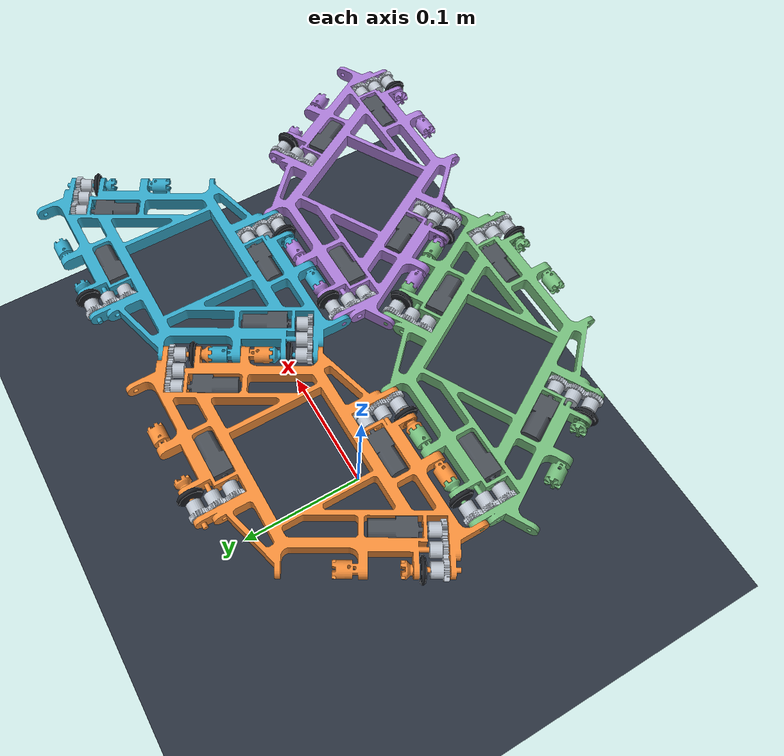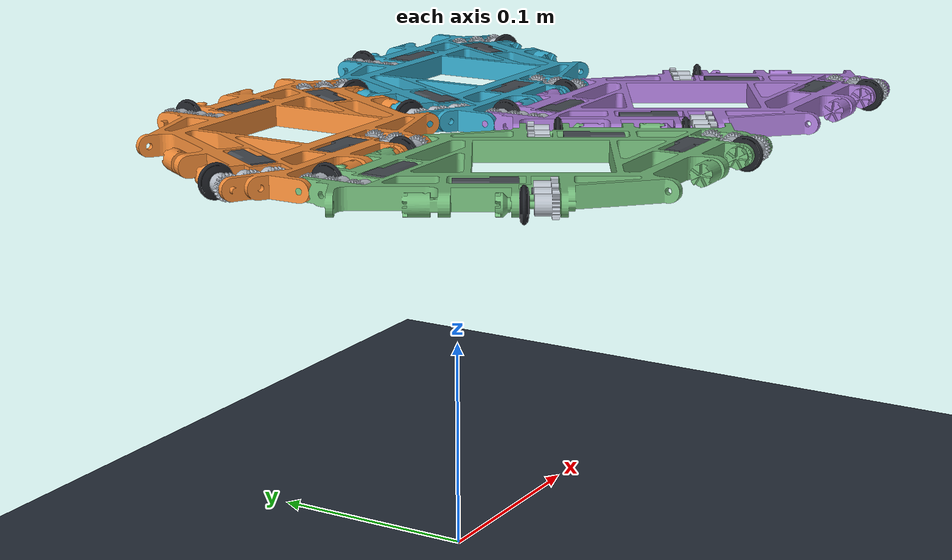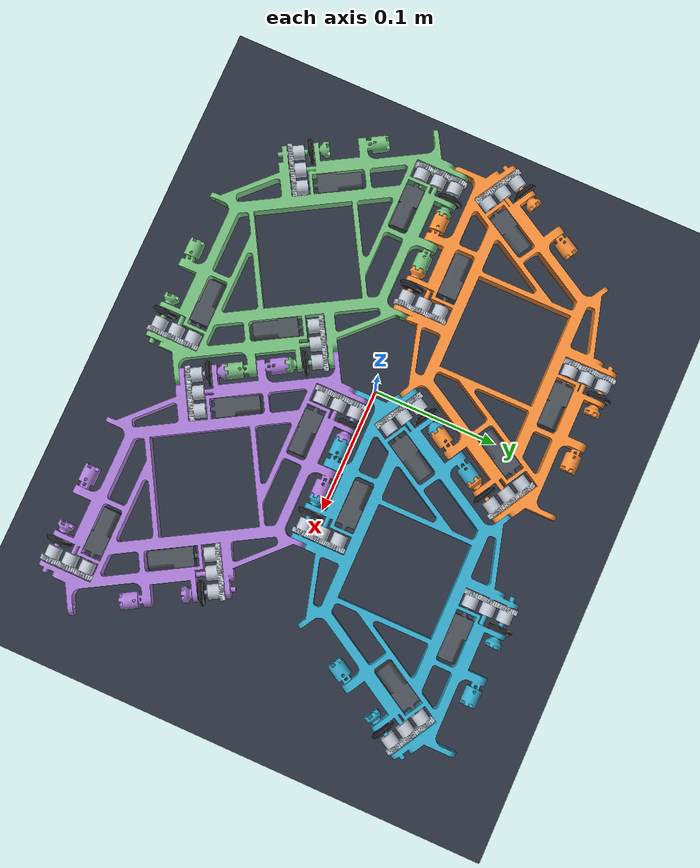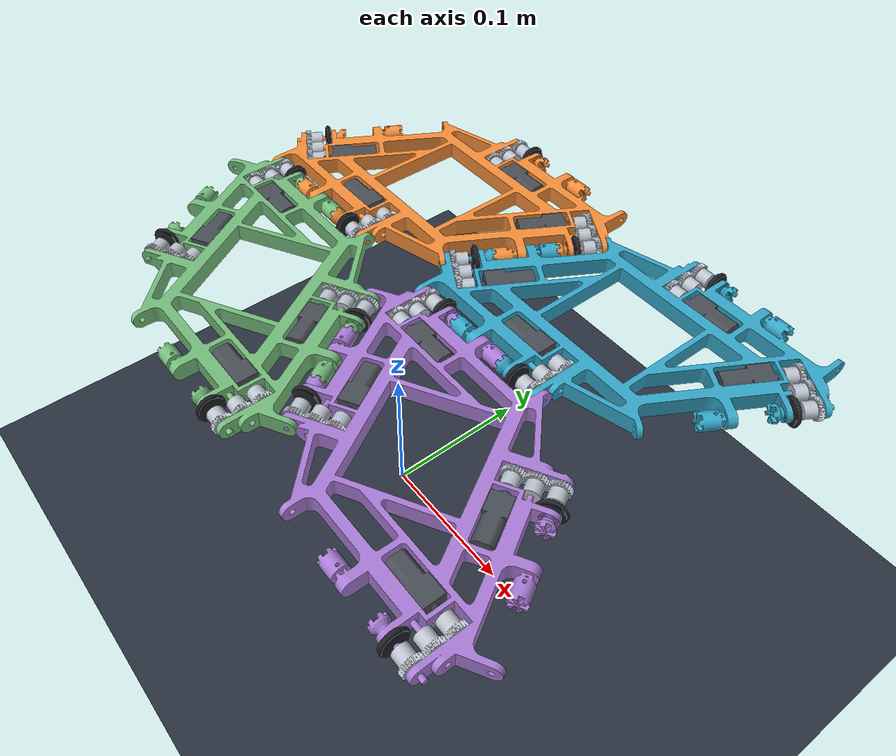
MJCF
<mujoco model="four_panel_miura">
  <compiler angle="radian" meshdir="meshes" autolimits="true" />
  <option timestep="0.001" integrator="implicitfast" iterations="150" tolerance="1e-10">
    <flag filterparent="disable" />
  </option>
  <visual>
    <global offwidth="1200" offheight="900" />
  </visual>
  <asset>
    <mesh name="wheel" file="wheel.obj" />
    <mesh name="motor" file="motor.obj" />
    <mesh name="frame_0" file="frame_0.obj" />
    <mesh name="core_0" file="core_0.obj" />
    <mesh name="p0_m0_gear" file="p0_m0_gear.obj" />
    <mesh name="p0_m0_original_coupler" file="p0_m0_original_coupler.obj" />
    <mesh name="p0_m1_gear" file="p0_m1_gear.obj" />
    <mesh name="p0_m1_original_coupler" file="p0_m1_original_coupler.obj" />
    <mesh name="p0_m2_gear" file="p0_m2_gear.obj" />
    <mesh name="p0_m2_original_coupler" file="p0_m2_original_coupler.obj" />
    <mesh name="p0_m3_gear" file="p0_m3_gear.obj" />
    <mesh name="p0_m3_original_coupler" file="p0_m3_original_coupler.obj" />
    <mesh name="frame_1" file="frame_1.obj" />
    <mesh name="core_1" file="core_1.obj" />
    <mesh name="p1_m0_gear" file="p1_m0_gear.obj" />
    <mesh name="p1_m0_original_coupler" file="p1_m0_original_coupler.obj" />
    <mesh name="p1_m1_gear" file="p1_m1_gear.obj" />
    <mesh name="p1_m1_original_coupler" file="p1_m1_original_coupler.obj" />
    <mesh name="p1_m2_gear" file="p1_m2_gear.obj" />
    <mesh name="p1_m2_original_coupler" file="p1_m2_original_coupler.obj" />
    <mesh name="p1_m3_gear" file="p1_m3_gear.obj" />
    <mesh name="p1_m3_original_coupler" file="p1_m3_original_coupler.obj" />
    <mesh name="frame_2" file="frame_2.obj" />
    <mesh name="core_2" file="core_2.obj" />
    <mesh name="p2_m0_gear" file="p2_m0_gear.obj" />
    <mesh name="p2_m0_original_coupler" file="p2_m0_original_coupler.obj" />
    <mesh name="p2_m1_gear" file="p2_m1_gear.obj" />
    <mesh name="p2_m1_original_coupler" file="p2_m1_original_coupler.obj" />
    <mesh name="p2_m2_gear" file="p2_m2_gear.obj" />
    <mesh name="p2_m2_original_coupler" file="p2_m2_original_coupler.obj" />
    <mesh name="p2_m3_gear" file="p2_m3_gear.obj" />
    <mesh name="p2_m3_original_coupler" file="p2_m3_original_coupler.obj" />
    <mesh name="frame_3" file="frame_3.obj" />
    <mesh name="core_3" file="core_3.obj" />
    <mesh name="p3_m0_gear" file="p3_m0_gear.obj" />
    <mesh name="p3_m0_original_coupler" file="p3_m0_original_coupler.obj" />
    <mesh name="p3_m1_gear" file="p3_m1_gear.obj" />
    <mesh name="p3_m1_original_coupler" file="p3_m1_original_coupler.obj" />
    <mesh name="p3_m2_gear" file="p3_m2_gear.obj" />
    <mesh name="p3_m2_original_coupler" file="p3_m2_original_coupler.obj" />
    <mesh name="p3_m3_gear" file="p3_m3_gear.obj" />
    <mesh name="p3_m3_original_coupler" file="p3_m3_original_coupler.obj" />
  </asset>
  <worldbody>
    <light pos="0 -0.2 1" dir="0 0 -1" diffuse=".9 .9 .9" />
    <geom name="floor" type="plane" size="2 2 .1" rgba=".16 .19 .24 1" contype="1" conaffinity="0" />
    <body name="panel_0" pos="0 0 .2">
      <freejoint name="base" />
      <body name="panel_1">
        <joint name="fold_1" axis="0.5 0.8660254038 0" damping="0.005" armature=".00001" limited="true" range="-1.5 1.5" />
        <body name="panel_2">
          <joint name="fold_2" axis="-1 1.224646799e-16 0" damping="0.005" armature=".00001" limited="true" range="-1.5 1.5" />
          <body name="panel_3">
            <joint name="fold_3" axis="0.5 -0.8660254038 0" damping="0.005" armature=".00001" limited="true" range="-1.5 1.5" />
            <geom name="panel_visual_3" type="mesh" mesh="frame_3" rgba=".66 .48 .83 1" mass="0" contype="0" conaffinity="0" group="1" />
            <inertial pos="0.1125000022 -0.06495190238 9.536743166e-10" mass="0.12" diaginertia="0.000225 0.000225 0.00045" />
            <geom name="panel_ground_3" type="mesh" mesh="frame_3" mass="0" group="3" rgba="1 0 0 0" contype="0" conaffinity="1" />
            <geom name="panel_collision_3" type="mesh" mesh="core_3" mass="0" group="3" rgba="1 0 0 0" contype="16" conaffinity="14" friction="0.9 .002 .0001" />
            <body name="p3_m0_drive" pos="0.0369999991 -0.02199999931 1.025015409e-09">
              <joint name="p3_m0" axis="1 -1.892219381e-09 0" damping=".000002" armature=".000002" limited="false" />
              <geom name="p3_m0_gear_visual" type="mesh" mesh="p3_m0_gear" rgba=".73 .76 .8 1" mass="0.002" contype="0" conaffinity="0" />
            </body>
            <body name="p3_m0_idler_drive" pos="0.03699999912 -0.01099999931 1.025015409e-09">
              <joint name="p3_m0_idler" axis="1 -1.892219381e-09 0" damping=".000002" armature=".0000003" limited="false" />
              <geom name="p3_m0_idler_gear_visual" type="mesh" mesh="p3_m0_gear" rgba=".73 .76 .8 1" mass="0.002" contype="0" conaffinity="0" />
            </body>
            <body name="p3_m0_output_drive" pos="0.03699999914 6.895472104e-10 1.025015409e-09">
              <joint name="p3_m0_output" axis="1 -1.892219381e-09 0" damping=".000002" armature=".0000003" limited="false" />
              <geom name="p3_m0_output_gear_visual" type="mesh" mesh="p3_m0_gear" rgba=".73 .76 .8 1" mass="0.002" contype="0" conaffinity="0" />
              <geom name="p3_m0_coupler" type="mesh" mesh="p3_m0_original_coupler" rgba=".66 .48 .83 1" mass=".0003" contype="0" conaffinity="0" />
              <geom name="p3_m0_wheel" type="mesh" mesh="wheel" pos="0.009 -1.702997443e-11 0" quat="-0.7071067805 0 0 0.7071067819" rgba=".12 .13 .15 1" mass="0" contype="0" conaffinity="0" />
              <geom name="p3_m0_tire" type="cylinder" pos="0.009 -1.702997443e-11 0" quat="0.7071067812 1.338001156e-09 0.7071067812 0" size=".008 .002" mass="0.003" rgba=".12 .13 .15 0" group="3" condim="4" contype="16" conaffinity="15" friction="0.9 .002 .0001" />
            </body>
            <geom name="p3_m0_motor_housing" type="mesh" mesh="motor" pos="0.0563999991 -0.02199999935 1.025015409e-09" quat="1 0 0 -9.461096223e-10" mass="0" rgba=".28 .3 .33 1" contype="0" conaffinity="0" />
            <geom name="p3_m0_motor_collision" type="box" pos="0.0563999991 -0.02199999935 1.025015409e-09" quat="1 0 0 -9.461096223e-10" size=".0186 .006 .005" mass="0" rgba="0 0 0 0" group="3" contype="16" conaffinity="15" friction="0.9 .002 .0001" />
            <body pos="0.0563999991 -0.02199999935 1.025015409e-09">
              <inertial pos="0 0 0" mass="0.01" diaginertia="0.0000002 0.0000012 0.0000012" />
            </body>
            <site name="interlock_3_0_19.65" pos="0.05664999914 6.523651059e-10 1.025015409e-09" size=".001" rgba="0 0 0 0" group="4" />
            <site name="interlock_3_0_56.35" pos="0.09334999914 5.829206344e-10 1.025015409e-09" size=".001" rgba="0 0 0 0" group="4" />
            <body name="p3_m1_drive" pos="0.07555255889 -0.08686087063 1.025715242e-09">
              <joint name="p3_m1" axis="-0.5 0.8660254038 0" damping=".000002" armature=".000002" limited="false" />
              <geom name="p3_m1_gear_visual" type="mesh" mesh="p3_m1_gear" rgba=".73 .76 .8 1" mass="0.002" contype="0" conaffinity="0" />
            </body>
            <body name="p3_m1_idler_drive" pos="0.06602627944 -0.09236087063 1.025715242e-09">
              <joint name="p3_m1_idler" axis="-0.5 0.8660254038 0" damping=".000002" armature=".0000003" limited="false" />
              <geom name="p3_m1_idler_gear_visual" type="mesh" mesh="p3_m1_gear" rgba=".73 .76 .8 1" mass="0.002" contype="0" conaffinity="0" />
            </body>
            <body name="p3_m1_output_drive" pos="0.0565 -0.09786087063 1.025715242e-09">
              <joint name="p3_m1_output" axis="-0.5 0.8660254038 0" damping=".000002" armature=".0000003" limited="false" />
              <geom name="p3_m1_output_gear_visual" type="mesh" mesh="p3_m1_gear" rgba=".73 .76 .8 1" mass="0.002" contype="0" conaffinity="0" />
              <geom name="p3_m1_coupler" type="mesh" mesh="p3_m1_original_coupler" rgba=".66 .48 .83 1" mass=".0003" contype="0" conaffinity="0" />
              <geom name="p3_m1_wheel" type="mesh" mesh="wheel" pos="-0.0045 0.007794228634 0" quat="0.9659258263 0 0 0.2588190451" rgba=".12 .13 .15 1" mass="0" contype="0" conaffinity="0" />
              <geom name="p3_m1_tire" type="cylinder" pos="-0.0045 0.007794228634 0" quat="0.7071067812 -0.6123724357 -0.3535533906 0" size=".008 .002" mass="0.003" rgba=".12 .13 .15 0" group="3" condim="4" contype="16" conaffinity="15" friction="0.9 .002 .0001" />
            </body>
            <geom name="p3_m1_motor_housing" type="mesh" mesh="motor" pos="0.06585255889 -0.07005997779 1.025715242e-09" quat="0.5 0 0 0.8660254038" mass="0" rgba=".28 .3 .33 1" contype="0" conaffinity="0" />
            <geom name="p3_m1_motor_collision" type="box" pos="0.06585255889 -0.07005997779 1.025715242e-09" quat="0.5 0 0 0.8660254038" size=".0186 .006 .005" mass="0" rgba="0 0 0 0" group="3" contype="16" conaffinity="15" friction="0.9 .002 .0001" />
            <body pos="0.06585255889 -0.07005997779 1.025715242e-09">
              <inertial pos="0 0 0" mass="0.01" diaginertia="0.0000002 0.0000012 0.0000012" />
            </body>
            <site name="interlock_3_1_19.65" pos="0.046675 -0.08084347144 1.025715242e-09" size=".001" rgba="0 0 0 0" group="4" />
            <site name="interlock_3_1_56.35" pos="0.028325 -0.04906033912 1.025715242e-09" size=".001" rgba="0 0 0 0" group="4" />
            <body name="p3_m2_drive" pos="0.1494474412 -0.04304293998 1.025715081e-09">
              <joint name="p3_m2" axis="0.5 -0.8660254038 0" damping=".000002" armature=".000002" limited="false" />
              <geom name="p3_m2_gear_visual" type="mesh" mesh="p3_m2_gear" rgba=".73 .76 .8 1" mass="0.002" contype="0" conaffinity="0" />
            </body>
            <body name="p3_m2_idler_drive" pos="0.1589737206 -0.03754293998 1.025715081e-09">
              <joint name="p3_m2_idler" axis="0.5 -0.8660254038 0" damping=".000002" armature=".0000003" limited="false" />
              <geom name="p3_m2_idler_gear_visual" type="mesh" mesh="p3_m2_gear" rgba=".73 .76 .8 1" mass="0.002" contype="0" conaffinity="0" />
            </body>
            <body name="p3_m2_output_drive" pos="0.1685 -0.03204293998 1.025715081e-09">
              <joint name="p3_m2_output" axis="0.5 -0.8660254038 0" damping=".000002" armature=".0000003" limited="false" />
              <geom name="p3_m2_output_gear_visual" type="mesh" mesh="p3_m2_gear" rgba=".73 .76 .8 1" mass="0.002" contype="0" conaffinity="0" />
              <geom name="p3_m2_coupler" type="mesh" mesh="p3_m2_original_coupler" rgba=".66 .48 .83 1" mass=".0003" contype="0" conaffinity="0" />
              <geom name="p3_m2_wheel" type="mesh" mesh="wheel" pos="0.0045 -0.007794228634 0" quat="-0.2588190451 0 0 0.9659258263" rgba=".12 .13 .15 1" mass="0" contype="0" conaffinity="0" />
              <geom name="p3_m2_tire" type="cylinder" pos="0.0045 -0.007794228634 0" quat="0.7071067812 0.6123724357 0.3535533906 0" size=".008 .002" mass="0.003" rgba=".12 .13 .15 0" group="3" condim="4" contype="16" conaffinity="15" friction="0.9 .002 .0001" />
            </body>
            <geom name="p3_m2_motor_housing" type="mesh" mesh="motor" pos="0.1591474412 -0.05984383281 1.025715081e-09" quat="0.8660254038 0 0 -0.5" mass="0" rgba=".28 .3 .33 1" contype="0" conaffinity="0" />
            <geom name="p3_m2_motor_collision" type="box" pos="0.1591474412 -0.05984383281 1.025715081e-09" quat="0.8660254038 0 0 -0.5" size=".0186 .006 .005" mass="0" rgba="0 0 0 0" group="3" contype="16" conaffinity="15" friction="0.9 .002 .0001" />
            <body pos="0.1591474412 -0.05984383281 1.025715081e-09">
              <inertial pos="0 0 0" mass="0.01" diaginertia="0.0000002 0.0000012 0.0000012" />
            </body>
            <body name="p3_m3_drive" pos="0.1879999996 -0.1079038105 1.025860599e-09">
              <joint name="p3_m3" axis="-1 1.892219381e-09 0" damping=".000002" armature=".000002" limited="false" />
              <geom name="p3_m3_gear_visual" type="mesh" mesh="p3_m3_gear" rgba=".73 .76 .8 1" mass="0.002" contype="0" conaffinity="0" />
            </body>
            <body name="p3_m3_idler_drive" pos="0.1879999996 -0.1189038105 1.025860599e-09">
              <joint name="p3_m3_idler" axis="-1 1.892219381e-09 0" damping=".000002" armature=".0000003" limited="false" />
              <geom name="p3_m3_idler_gear_visual" type="mesh" mesh="p3_m3_gear" rgba=".73 .76 .8 1" mass="0.002" contype="0" conaffinity="0" />
            </body>
            <body name="p3_m3_output_drive" pos="0.1879999995 -0.1299038105 1.025860599e-09">
              <joint name="p3_m3_output" axis="-1 1.892219381e-09 0" damping=".000002" armature=".0000003" limited="false" />
              <geom name="p3_m3_output_gear_visual" type="mesh" mesh="p3_m3_gear" rgba=".73 .76 .8 1" mass="0.002" contype="0" conaffinity="0" />
              <geom name="p3_m3_coupler" type="mesh" mesh="p3_m3_original_coupler" rgba=".66 .48 .83 1" mass=".0003" contype="0" conaffinity="0" />
              <geom name="p3_m3_wheel" type="mesh" mesh="wheel" pos="-0.009 1.702997443e-11 0" quat="0.7071067819 0 0 0.7071067805" rgba=".12 .13 .15 1" mass="0" contype="0" conaffinity="0" />
              <geom name="p3_m3_tire" type="cylinder" pos="-0.009 1.702997443e-11 0" quat="0.7071067812 -1.338001156e-09 -0.7071067812 0" size=".008 .002" mass="0.003" rgba=".12 .13 .15 0" group="3" condim="4" contype="16" conaffinity="15" friction="0.9 .002 .0001" />
            </body>
            <geom name="p3_m3_motor_housing" type="mesh" mesh="motor" pos="0.1685999996 -0.1079038104 1.025860599e-09" quat="9.461096223e-10 0 0 1" mass="0" rgba=".28 .3 .33 1" contype="0" conaffinity="0" />
            <geom name="p3_m3_motor_collision" type="box" pos="0.1685999996 -0.1079038104 1.025860599e-09" quat="9.461096223e-10 0 0 1" size=".0186 .006 .005" mass="0" rgba="0 0 0 0" group="3" contype="16" conaffinity="15" friction="0.9 .002 .0001" />
            <body pos="0.1685999996 -0.1079038104 1.025860599e-09">
              <inertial pos="0 0 0" mass="0.01" diaginertia="0.0000002 0.0000012 0.0000012" />
            </body>
            <site name="closure_3" pos="0.15 0 0" size=".002" rgba="1 .1 .1 0" group="4" />
          </body>
          <geom name="panel_visual_2" type="mesh" mesh="frame_2" rgba=".45 .73 .48 1" mass="0" contype="0" conaffinity="0" group="1" />
          <inertial pos="-0.03750000223 -0.06495190819 9.536743166e-10" mass="0.12" diaginertia="0.000225 0.000225 0.00045" />
          <geom name="panel_ground_2" type="mesh" mesh="frame_2" mass="0" group="3" rgba="1 0 0 0" contype="0" conaffinity="1" />
          <geom name="panel_collision_2" type="mesh" mesh="core_2" mass="0" group="3" rgba="1 0 0 0" contype="8" conaffinity="22" friction="0.9 .002 .0001" />
          <body name="p2_m0_drive" pos="0.0380000009 -0.1079038113 1.025015409e-09">
            <joint name="p2_m0" axis="-1 1.892219492e-09 0" damping=".000002" armature=".000002" limited="false" />
            <geom name="p2_m0_gear_visual" type="mesh" mesh="p2_m0_gear" rgba=".73 .76 .8 1" mass="0.002" contype="0" conaffinity="0" />
          </body>
          <body name="p2_m0_idler_drive" pos="0.03800000088 -0.1189038113 1.025015409e-09">
            <joint name="p2_m0_idler" axis="-1 1.892219492e-09 0" damping=".000002" armature=".0000003" limited="false" />
            <geom name="p2_m0_idler_gear_visual" type="mesh" mesh="p2_m0_gear" rgba=".73 .76 .8 1" mass="0.002" contype="0" conaffinity="0" />
          </body>
          <body name="p2_m0_output_drive" pos="0.03800000086 -0.1299038113 1.025015409e-09">
            <joint name="p2_m0_output" axis="-1 1.892219492e-09 0" damping=".000002" armature=".0000003" limited="false" />
            <geom name="p2_m0_output_gear_visual" type="mesh" mesh="p2_m0_gear" rgba=".73 .76 .8 1" mass="0.002" contype="0" conaffinity="0" />
            <geom name="p2_m0_coupler" type="mesh" mesh="p2_m0_original_coupler" rgba=".45 .73 .48 1" mass=".0003" contype="0" conaffinity="0" />
            <geom name="p2_m0_wheel" type="mesh" mesh="wheel" pos="-0.009 1.702997543e-11 0" quat="0.7071067819 0 0 0.7071067805" rgba=".12 .13 .15 1" mass="0" contype="0" conaffinity="0" />
            <geom name="p2_m0_tire" type="cylinder" pos="-0.009 1.702997543e-11 0" quat="0.7071067812 -1.338001234e-09 -0.7071067812 0" size=".008 .002" mass="0.003" rgba=".12 .13 .15 0" group="3" condim="4" contype="8" conaffinity="23" friction="0.9 .002 .0001" />
          </body>
          <geom name="p2_m0_motor_housing" type="mesh" mesh="motor" pos="0.0186000009 -0.1079038112 1.025015409e-09" quat="9.461096362e-10 0 0 1" mass="0" rgba=".28 .3 .33 1" contype="0" conaffinity="0" />
          <geom name="p2_m0_motor_collision" type="box" pos="0.0186000009 -0.1079038112 1.025015409e-09" quat="9.461096362e-10 0 0 1" size=".0186 .006 .005" mass="0" rgba="0 0 0 0" group="3" contype="8" conaffinity="23" friction="0.9 .002 .0001" />
          <body pos="0.0186000009 -0.1079038112 1.025015409e-09">
            <inertial pos="0 0 0" mass="0.01" diaginertia="0.0000002 0.0000012 0.0000012" />
          </body>
          <body name="p2_m1_drive" pos="-0.0005525588852 -0.04304293994 1.025715242e-09">
            <joint name="p2_m1" axis="0.5 -0.8660254038 0" damping=".000002" armature=".000002" limited="false" />
            <geom name="p2_m1_gear_visual" type="mesh" mesh="p2_m1_gear" rgba=".73 .76 .8 1" mass="0.002" contype="0" conaffinity="0" />
          </body>
          <body name="p2_m1_idler_drive" pos="0.008973720556 -0.03754293994 1.025715242e-09">
            <joint name="p2_m1_idler" axis="0.5 -0.8660254038 0" damping=".000002" armature=".0000003" limited="false" />
            <geom name="p2_m1_idler_gear_visual" type="mesh" mesh="p2_m1_gear" rgba=".73 .76 .8 1" mass="0.002" contype="0" conaffinity="0" />
          </body>
          <body name="p2_m1_output_drive" pos="0.0185 -0.03204293994 1.025715242e-09">
            <joint name="p2_m1_output" axis="0.5 -0.8660254038 0" damping=".000002" armature=".0000003" limited="false" />
            <geom name="p2_m1_output_gear_visual" type="mesh" mesh="p2_m1_gear" rgba=".73 .76 .8 1" mass="0.002" contype="0" conaffinity="0" />
            <geom name="p2_m1_coupler" type="mesh" mesh="p2_m1_original_coupler" rgba=".45 .73 .48 1" mass=".0003" contype="0" conaffinity="0" />
            <geom name="p2_m1_wheel" type="mesh" mesh="wheel" pos="0.0045 -0.007794228634 0" quat="-0.2588190451 0 0 0.9659258263" rgba=".12 .13 .15 1" mass="0" contype="0" conaffinity="0" />
            <geom name="p2_m1_tire" type="cylinder" pos="0.0045 -0.007794228634 0" quat="0.7071067812 0.6123724357 0.3535533906 0" size=".008 .002" mass="0.003" rgba=".12 .13 .15 0" group="3" condim="4" contype="8" conaffinity="23" friction="0.9 .002 .0001" />
          </body>
          <geom name="p2_m1_motor_housing" type="mesh" mesh="motor" pos="0.009147441115 -0.05984383277 1.025715242e-09" quat="0.8660254038 0 0 -0.5" mass="0" rgba=".28 .3 .33 1" contype="0" conaffinity="0" />
          <geom name="p2_m1_motor_collision" type="box" pos="0.009147441115 -0.05984383277 1.025715242e-09" quat="0.8660254038 0 0 -0.5" size=".0186 .006 .005" mass="0" rgba="0 0 0 0" group="3" contype="8" conaffinity="23" friction="0.9 .002 .0001" />
          <body pos="0.009147441115 -0.05984383277 1.025715242e-09">
            <inertial pos="0 0 0" mass="0.01" diaginertia="0.0000002 0.0000012 0.0000012" />
          </body>
          <site name="interlock_2_1_19.65" pos="0.028325 -0.04906033913 1.025715242e-09" size=".001" rgba="0 0 0 0" group="4" />
          <site name="interlock_2_1_56.35" pos="0.046675 -0.08084347144 1.025715242e-09" size=".001" rgba="0 0 0 0" group="4" />
          <body name="p2_m2_drive" pos="-0.07444744116 -0.08686087059 1.025715081e-09">
            <joint name="p2_m2" axis="-0.5 0.8660254038 0" damping=".000002" armature=".000002" limited="false" />
            <geom name="p2_m2_gear_visual" type="mesh" mesh="p2_m2_gear" rgba=".73 .76 .8 1" mass="0.002" contype="0" conaffinity="0" />
          </body>
          <body name="p2_m2_idler_drive" pos="-0.0839737206 -0.09236087059 1.025715081e-09">
            <joint name="p2_m2_idler" axis="-0.5 0.8660254038 0" damping=".000002" armature=".0000003" limited="false" />
            <geom name="p2_m2_idler_gear_visual" type="mesh" mesh="p2_m2_gear" rgba=".73 .76 .8 1" mass="0.002" contype="0" conaffinity="0" />
          </body>
          <body name="p2_m2_output_drive" pos="-0.09350000004 -0.09786087059 1.025715081e-09">
            <joint name="p2_m2_output" axis="-0.5 0.8660254038 0" damping=".000002" armature=".0000003" limited="false" />
            <geom name="p2_m2_output_gear_visual" type="mesh" mesh="p2_m2_gear" rgba=".73 .76 .8 1" mass="0.002" contype="0" conaffinity="0" />
            <geom name="p2_m2_coupler" type="mesh" mesh="p2_m2_original_coupler" rgba=".45 .73 .48 1" mass=".0003" contype="0" conaffinity="0" />
            <geom name="p2_m2_wheel" type="mesh" mesh="wheel" pos="-0.0045 0.007794228634 0" quat="0.9659258263 0 0 0.2588190451" rgba=".12 .13 .15 1" mass="0" contype="0" conaffinity="0" />
            <geom name="p2_m2_tire" type="cylinder" pos="-0.0045 0.007794228634 0" quat="0.7071067812 -0.6123724357 -0.3535533906 0" size=".008 .002" mass="0.003" rgba=".12 .13 .15 0" group="3" condim="4" contype="8" conaffinity="23" friction="0.9 .002 .0001" />
          </body>
          <geom name="p2_m2_motor_housing" type="mesh" mesh="motor" pos="-0.08414744116 -0.07005997776 1.025715081e-09" quat="0.5 0 0 0.8660254038" mass="0" rgba=".28 .3 .33 1" contype="0" conaffinity="0" />
          <geom name="p2_m2_motor_collision" type="box" pos="-0.08414744116 -0.07005997776 1.025715081e-09" quat="0.5 0 0 0.8660254038" size=".0186 .006 .005" mass="0" rgba="0 0 0 0" group="3" contype="8" conaffinity="23" friction="0.9 .002 .0001" />
          <body pos="-0.08414744116 -0.07005997776 1.025715081e-09">
            <inertial pos="0 0 0" mass="0.01" diaginertia="0.0000002 0.0000012 0.0000012" />
          </body>
          <body name="p2_m3_drive" pos="-0.1129999996 -0.0220000001 1.025860599e-09">
            <joint name="p2_m3" axis="1 -1.892219492e-09 0" damping=".000002" armature=".000002" limited="false" />
            <geom name="p2_m3_gear_visual" type="mesh" mesh="p2_m3_gear" rgba=".73 .76 .8 1" mass="0.002" contype="0" conaffinity="0" />
          </body>
          <body name="p2_m3_idler_drive" pos="-0.1129999996 -0.0110000001 1.025860599e-09">
            <joint name="p2_m3_idler" axis="1 -1.892219492e-09 0" damping=".000002" armature=".0000003" limited="false" />
            <geom name="p2_m3_idler_gear_visual" type="mesh" mesh="p2_m3_gear" rgba=".73 .76 .8 1" mass="0.002" contype="0" conaffinity="0" />
          </body>
          <body name="p2_m3_output_drive" pos="-0.1129999995 -9.667230927e-11 1.025860599e-09">
            <joint name="p2_m3_output" axis="1 -1.892219492e-09 0" damping=".000002" armature=".0000003" limited="false" />
            <geom name="p2_m3_output_gear_visual" type="mesh" mesh="p2_m3_gear" rgba=".73 .76 .8 1" mass="0.002" contype="0" conaffinity="0" />
            <geom name="p2_m3_coupler" type="mesh" mesh="p2_m3_original_coupler" rgba=".45 .73 .48 1" mass=".0003" contype="0" conaffinity="0" />
            <geom name="p2_m3_wheel" type="mesh" mesh="wheel" pos="0.009 -1.702997543e-11 0" quat="-0.7071067805 0 0 0.7071067819" rgba=".12 .13 .15 1" mass="0" contype="0" conaffinity="0" />
            <geom name="p2_m3_tire" type="cylinder" pos="0.009 -1.702997543e-11 0" quat="0.7071067812 1.338001234e-09 0.7071067812 0" size=".008 .002" mass="0.003" rgba=".12 .13 .15 0" group="3" condim="4" contype="8" conaffinity="23" friction="0.9 .002 .0001" />
          </body>
          <geom name="p2_m3_motor_housing" type="mesh" mesh="motor" pos="-0.09359999959 -0.02200000013 1.025860599e-09" quat="1 0 0 -9.461096362e-10" mass="0" rgba=".28 .3 .33 1" contype="0" conaffinity="0" />
          <geom name="p2_m3_motor_collision" type="box" pos="-0.09359999959 -0.02200000013 1.025860599e-09" quat="1 0 0 -9.461096362e-10" size=".0186 .006 .005" mass="0" rgba="0 0 0 0" group="3" contype="8" conaffinity="23" friction="0.9 .002 .0001" />
          <body pos="-0.09359999959 -0.02200000013 1.025860599e-09">
            <inertial pos="0 0 0" mass="0.01" diaginertia="0.0000002 0.0000012 0.0000012" />
          </body>
          <site name="interlock_2_3_19.65" pos="-0.09334999955 -1.338544209e-10 1.025860599e-09" size=".001" rgba="0 0 0 0" group="4" />
          <site name="interlock_2_3_56.35" pos="-0.05664999955 -2.032988853e-10 1.025860599e-09" size=".001" rgba="0 0 0 0" group="4" />
        </body>
        <geom name="panel_visual_1" type="mesh" mesh="frame_1" rgba=".95 .55 .22 1" mass="0" contype="0" conaffinity="0" group="1" />
        <inertial pos="-0.03750000143 0.06495190271 9.536743166e-10" mass="0.12" diaginertia="0.000225 0.000225 0.00045" />
        <geom name="panel_ground_1" type="mesh" mesh="frame_1" mass="0" group="3" rgba="1 0 0 0" contype="0" conaffinity="1" />
        <geom name="panel_collision_1" type="mesh" mesh="core_1" mass="0" group="3" rgba="1 0 0 0" contype="4" conaffinity="26" friction="0.9 .002 .0001" />
        <body name="p1_m0_drive" pos="0.03744744216 0.1088608711 1.025015409e-09">
          <joint name="p1_m0" axis="-0.5000000016 -0.8660254028 0" damping=".000002" armature=".000002" limited="false" />
          <geom name="p1_m0_gear_visual" type="mesh" mesh="p1_m0_gear" rgba=".73 .76 .8 1" mass="0.002" contype="0" conaffinity="0" />
        </body>
        <body name="p1_m0_idler_drive" pos="0.04697372159 0.103360871 1.025015409e-09">
          <joint name="p1_m0_idler" axis="-0.5000000016 -0.8660254028 0" damping=".000002" armature=".0000003" limited="false" />
          <geom name="p1_m0_idler_gear_visual" type="mesh" mesh="p1_m0_gear" rgba=".73 .76 .8 1" mass="0.002" contype="0" conaffinity="0" />
        </body>
        <body name="p1_m0_output_drive" pos="0.05650000103 0.09786087103 1.025015409e-09">
          <joint name="p1_m0_output" axis="-0.5000000016 -0.8660254028 0" damping=".000002" armature=".0000003" limited="false" />
          <geom name="p1_m0_output_gear_visual" type="mesh" mesh="p1_m0_gear" rgba=".73 .76 .8 1" mass="0.002" contype="0" conaffinity="0" />
          <geom name="p1_m0_coupler" type="mesh" mesh="p1_m0_original_coupler" rgba=".95 .55 .22 1" mass=".0003" contype="0" conaffinity="0" />
          <geom name="p1_m0_wheel" type="mesh" mesh="wheel" pos="-0.004500000015 -0.007794228626 0" quat="0.258819046 0 0 0.965925826" rgba=".12 .13 .15 1" mass="0" contype="0" conaffinity="0" />
          <geom name="p1_m0_tire" type="cylinder" pos="-0.004500000015 -0.007794228626 0" quat="0.7071067812 0.612372435 -0.3535533918 0" size=".008 .002" mass="0.003" rgba=".12 .13 .15 0" group="3" condim="4" contype="4" conaffinity="27" friction="0.9 .002 .0001" />
        </body>
        <geom name="p1_m0_motor_housing" type="mesh" mesh="motor" pos="0.02774744213 0.09205997825 1.025015409e-09" quat="-0.4999999992 0 0 0.8660254043" mass="0" rgba=".28 .3 .33 1" contype="0" conaffinity="0" />
        <geom name="p1_m0_motor_collision" type="box" pos="0.02774744213 0.09205997825 1.025015409e-09" quat="-0.4999999992 0 0 0.8660254043" size=".0186 .006 .005" mass="0" rgba="0 0 0 0" group="3" contype="4" conaffinity="27" friction="0.9 .002 .0001" />
        <body pos="0.02774744213 0.09205997825 1.025015409e-09">
          <inertial pos="0 0 0" mass="0.01" diaginertia="0.0000002 0.0000012 0.0000012" />
        </body>
        <site name="interlock_1_0_19.65" pos="0.04667500099 0.08084347186 1.025015409e-09" size=".001" rgba="0 0 0 0" group="4" />
        <site name="interlock_1_0_56.35" pos="0.02832500093 0.04906033958 1.025015409e-09" size=".001" rgba="0 0 0 0" group="4" />
        <body name="p1_m1_drive" pos="-0.038 0.1079038106 1.025715242e-09">
          <joint name="p1_m1" axis="1 -1.224646799e-16 0" damping=".000002" armature=".000002" limited="false" />
          <geom name="p1_m1_gear_visual" type="mesh" mesh="p1_m1_gear" rgba=".73 .76 .8 1" mass="0.002" contype="0" conaffinity="0" />
        </body>
        <body name="p1_m1_idler_drive" pos="-0.038 0.1189038106 1.025715242e-09">
          <joint name="p1_m1_idler" axis="1 -1.224646799e-16 0" damping=".000002" armature=".0000003" limited="false" />
          <geom name="p1_m1_idler_gear_visual" type="mesh" mesh="p1_m1_gear" rgba=".73 .76 .8 1" mass="0.002" contype="0" conaffinity="0" />
        </body>
        <body name="p1_m1_output_drive" pos="-0.038 0.1299038106 1.025715242e-09">
          <joint name="p1_m1_output" axis="1 -1.224646799e-16 0" damping=".000002" armature=".0000003" limited="false" />
          <geom name="p1_m1_output_gear_visual" type="mesh" mesh="p1_m1_gear" rgba=".73 .76 .8 1" mass="0.002" contype="0" conaffinity="0" />
          <geom name="p1_m1_coupler" type="mesh" mesh="p1_m1_original_coupler" rgba=".95 .55 .22 1" mass=".0003" contype="0" conaffinity="0" />
          <geom name="p1_m1_wheel" type="mesh" mesh="wheel" pos="0.009 -1.102182119e-18 0" quat="-0.7071067812 0 0 0.7071067812" rgba=".12 .13 .15 1" mass="0" contype="0" conaffinity="0" />
          <geom name="p1_m1_tire" type="cylinder" pos="0.009 -1.102182119e-18 0" quat="0.7071067812 8.659560562e-17 0.7071067812 0" size=".008 .002" mass="0.003" rgba=".12 .13 .15 0" group="3" condim="4" contype="4" conaffinity="27" friction="0.9 .002 .0001" />
        </body>
        <geom name="p1_m1_motor_housing" type="mesh" mesh="motor" pos="-0.0186 0.1079038106 1.025715242e-09" quat="1 0 0 -1.693940481e-16" mass="0" rgba=".28 .3 .33 1" contype="0" conaffinity="0" />
        <geom name="p1_m1_motor_collision" type="box" pos="-0.0186 0.1079038106 1.025715242e-09" quat="1 0 0 -1.693940481e-16" size=".0186 .006 .005" mass="0" rgba="0 0 0 0" group="3" contype="4" conaffinity="27" friction="0.9 .002 .0001" />
        <body pos="-0.0186 0.1079038106 1.025715242e-09">
          <inertial pos="0 0 0" mass="0.01" diaginertia="0.0000002 0.0000012 0.0000012" />
        </body>
        <body name="p1_m2_drive" pos="-0.03700000005 0.02199999998 1.025715081e-09">
          <joint name="p1_m2" axis="-1 1.224646799e-16 0" damping=".000002" armature=".000002" limited="false" />
          <geom name="p1_m2_gear_visual" type="mesh" mesh="p1_m2_gear" rgba=".73 .76 .8 1" mass="0.002" contype="0" conaffinity="0" />
        </body>
        <body name="p1_m2_idler_drive" pos="-0.03700000005 0.01099999998 1.025715081e-09">
          <joint name="p1_m2_idler" axis="-1 1.224646799e-16 0" damping=".000002" armature=".0000003" limited="false" />
          <geom name="p1_m2_idler_gear_visual" type="mesh" mesh="p1_m2_gear" rgba=".73 .76 .8 1" mass="0.002" contype="0" conaffinity="0" />
        </body>
        <body name="p1_m2_output_drive" pos="-0.03700000005 -1.688919839e-11 1.025715081e-09">
          <joint name="p1_m2_output" axis="-1 1.224646799e-16 0" damping=".000002" armature=".0000003" limited="false" />
          <geom name="p1_m2_output_gear_visual" type="mesh" mesh="p1_m2_gear" rgba=".73 .76 .8 1" mass="0.002" contype="0" conaffinity="0" />
          <geom name="p1_m2_coupler" type="mesh" mesh="p1_m2_original_coupler" rgba=".95 .55 .22 1" mass=".0003" contype="0" conaffinity="0" />
          <geom name="p1_m2_wheel" type="mesh" mesh="wheel" pos="-0.009 1.102182119e-18 0" quat="0.7071067812 0 0 0.7071067812" rgba=".12 .13 .15 1" mass="0" contype="0" conaffinity="0" />
          <geom name="p1_m2_tire" type="cylinder" pos="-0.009 1.102182119e-18 0" quat="0.7071067812 -8.659560562e-17 -0.7071067812 0" size=".008 .002" mass="0.003" rgba=".12 .13 .15 0" group="3" condim="4" contype="4" conaffinity="27" friction="0.9 .002 .0001" />
        </body>
        <geom name="p1_m2_motor_housing" type="mesh" mesh="motor" pos="-0.05640000005 0.02199999998 1.025715081e-09" quat="-5.265055687e-17 0 0 1" mass="0" rgba=".28 .3 .33 1" contype="0" conaffinity="0" />
        <geom name="p1_m2_motor_collision" type="box" pos="-0.05640000005 0.02199999998 1.025715081e-09" quat="-5.265055687e-17 0 0 1" size=".0186 .006 .005" mass="0" rgba="0 0 0 0" group="3" contype="4" conaffinity="27" friction="0.9 .002 .0001" />
        <body pos="-0.05640000005 0.02199999998 1.025715081e-09">
          <inertial pos="0 0 0" mass="0.01" diaginertia="0.0000002 0.0000012 0.0000012" />
        </body>
        <site name="interlock_1_2_19.65" pos="-0.05665000005 -1.688919599e-11 1.025715081e-09" size=".001" rgba="0 0 0 0" group="4" />
        <site name="interlock_1_2_56.35" pos="-0.09335000005 -1.688919149e-11 1.025715081e-09" size=".001" rgba="0 0 0 0" group="4" />
        <body name="p1_m3_drive" pos="-0.1124474408 0.02104294025 1.025860599e-09">
          <joint name="p1_m3" axis="0.5000000016 0.8660254028 0" damping=".000002" armature=".000002" limited="false" />
          <geom name="p1_m3_gear_visual" type="mesh" mesh="p1_m3_gear" rgba=".73 .76 .8 1" mass="0.002" contype="0" conaffinity="0" />
        </body>
        <body name="p1_m3_idler_drive" pos="-0.1219737203 0.02654294026 1.025860599e-09">
          <joint name="p1_m3_idler" axis="0.5000000016 0.8660254028 0" damping=".000002" armature=".0000003" limited="false" />
          <geom name="p1_m3_idler_gear_visual" type="mesh" mesh="p1_m3_gear" rgba=".73 .76 .8 1" mass="0.002" contype="0" conaffinity="0" />
        </body>
        <body name="p1_m3_output_drive" pos="-0.1314999997 0.03204294028 1.025860599e-09">
          <joint name="p1_m3_output" axis="0.5000000016 0.8660254028 0" damping=".000002" armature=".0000003" limited="false" />
          <geom name="p1_m3_output_gear_visual" type="mesh" mesh="p1_m3_gear" rgba=".73 .76 .8 1" mass="0.002" contype="0" conaffinity="0" />
          <geom name="p1_m3_coupler" type="mesh" mesh="p1_m3_original_coupler" rgba=".95 .55 .22 1" mass=".0003" contype="0" conaffinity="0" />
          <geom name="p1_m3_wheel" type="mesh" mesh="wheel" pos="0.004500000015 0.007794228626 0" quat="0.965925826 0 0 -0.258819046" rgba=".12 .13 .15 1" mass="0" contype="0" conaffinity="0" />
          <geom name="p1_m3_tire" type="cylinder" pos="0.004500000015 0.007794228626 0" quat="0.7071067812 -0.612372435 0.3535533918 0" size=".008 .002" mass="0.003" rgba=".12 .13 .15 0" group="3" condim="4" contype="4" conaffinity="27" friction="0.9 .002 .0001" />
        </body>
        <geom name="p1_m3_motor_housing" type="mesh" mesh="motor" pos="-0.1027474408 0.03784383306 1.025860599e-09" quat="0.8660254043 0 0 0.4999999992" mass="0" rgba=".28 .3 .33 1" contype="0" conaffinity="0" />
        <geom name="p1_m3_motor_collision" type="box" pos="-0.1027474408 0.03784383306 1.025860599e-09" quat="0.8660254043 0 0 0.4999999992" size=".0186 .006 .005" mass="0" rgba="0 0 0 0" group="3" contype="4" conaffinity="27" friction="0.9 .002 .0001" />
        <body pos="-0.1027474408 0.03784383306 1.025860599e-09">
          <inertial pos="0 0 0" mass="0.01" diaginertia="0.0000002 0.0000012 0.0000012" />
        </body>
      </body>
      <geom name="panel_visual_0" type="mesh" mesh="frame_0" rgba=".2 .65 .78 1" mass="0" contype="0" conaffinity="0" group="1" />
      <inertial pos="0.1125000014 0.06495190786 9.536743166e-10" mass="0.12" diaginertia="0.000225 0.000225 0.00045" />
      <geom name="panel_ground_0" type="mesh" mesh="frame_0" mass="0" group="3" rgba="1 0 0 0" contype="0" conaffinity="1" />
      <geom name="panel_collision_0" type="mesh" mesh="core_0" mass="0" group="3" rgba="1 0 0 0" contype="2" conaffinity="28" friction="0.9 .002 .0001" />
      <body name="p0_m0_drive" pos="0.03755255784 0.02104293951 1.025015409e-09">
        <joint name="p0_m0" axis="0.5000000016 0.8660254028 0" damping=".000002" armature=".000002" limited="false" />
        <geom name="p0_m0_gear_visual" type="mesh" mesh="p0_m0_gear" rgba=".73 .76 .8 1" mass="0.002" contype="0" conaffinity="0" />
      </body>
      <body name="p0_m0_idler_drive" pos="0.02802627841 0.02654293952 1.025015409e-09">
        <joint name="p0_m0_idler" axis="0.5000000016 0.8660254028 0" damping=".000002" armature=".0000003" limited="false" />
        <geom name="p0_m0_idler_gear_visual" type="mesh" mesh="p0_m0_gear" rgba=".73 .76 .8 1" mass="0.002" contype="0" conaffinity="0" />
      </body>
      <body name="p0_m0_output_drive" pos="0.01849999897 0.03204293954 1.025015409e-09">
        <joint name="p0_m0_output" axis="0.5000000016 0.8660254028 0" damping=".000002" armature=".0000003" limited="false" />
        <geom name="p0_m0_output_gear_visual" type="mesh" mesh="p0_m0_gear" rgba=".73 .76 .8 1" mass="0.002" contype="0" conaffinity="0" />
        <geom name="p0_m0_coupler" type="mesh" mesh="p0_m0_original_coupler" rgba=".2 .65 .78 1" mass=".0003" contype="0" conaffinity="0" />
        <geom name="p0_m0_wheel" type="mesh" mesh="wheel" pos="0.004500000015 0.007794228626 0" quat="0.965925826 0 0 -0.258819046" rgba=".12 .13 .15 1" mass="0" contype="0" conaffinity="0" />
        <geom name="p0_m0_tire" type="cylinder" pos="0.004500000015 0.007794228626 0" quat="0.7071067812 -0.612372435 0.3535533918 0" size=".008 .002" mass="0.003" rgba=".12 .13 .15 0" group="3" condim="4" contype="2" conaffinity="29" friction="0.9 .002 .0001" />
      </body>
      <geom name="p0_m0_motor_housing" type="mesh" mesh="motor" pos="0.04725255787 0.03784383232 1.025015409e-09" quat="0.8660254043 0 0 0.4999999992" mass="0" rgba=".28 .3 .33 1" contype="0" conaffinity="0" />
      <geom name="p0_m0_motor_collision" type="box" pos="0.04725255787 0.03784383232 1.025015409e-09" quat="0.8660254043 0 0 0.4999999992" size=".0186 .006 .005" mass="0" rgba="0 0 0 0" group="3" contype="2" conaffinity="29" friction="0.9 .002 .0001" />
      <body pos="0.04725255787 0.03784383232 1.025015409e-09">
        <inertial pos="0 0 0" mass="0.01" diaginertia="0.0000002 0.0000012 0.0000012" />
      </body>
      <site name="interlock_0_0_19.65" pos="0.02832499901 0.04906033871 1.025015409e-09" size=".001" rgba="0 0 0 0" group="4" />
      <site name="interlock_0_0_56.35" pos="0.04667499907 0.08084347099 1.025015409e-09" size=".001" rgba="0 0 0 0" group="4" />
      <body name="p0_m1_drive" pos="0.113 0.022 1.025715242e-09">
        <joint name="p0_m1" axis="-1 0 0" damping=".000002" armature=".000002" limited="false" />
        <geom name="p0_m1_gear_visual" type="mesh" mesh="p0_m1_gear" rgba=".73 .76 .8 1" mass="0.002" contype="0" conaffinity="0" />
      </body>
      <body name="p0_m1_idler_drive" pos="0.113 0.011 1.025715242e-09">
        <joint name="p0_m1_idler" axis="-1 0 0" damping=".000002" armature=".0000003" limited="false" />
        <geom name="p0_m1_idler_gear_visual" type="mesh" mesh="p0_m1_gear" rgba=".73 .76 .8 1" mass="0.002" contype="0" conaffinity="0" />
      </body>
      <body name="p0_m1_output_drive" pos="0.113 2.268444099e-12 1.025715242e-09">
        <joint name="p0_m1_output" axis="-1 0 0" damping=".000002" armature=".0000003" limited="false" />
        <geom name="p0_m1_output_gear_visual" type="mesh" mesh="p0_m1_gear" rgba=".73 .76 .8 1" mass="0.002" contype="0" conaffinity="0" />
        <geom name="p0_m1_coupler" type="mesh" mesh="p0_m1_original_coupler" rgba=".2 .65 .78 1" mass=".0003" contype="0" conaffinity="0" />
        <geom name="p0_m1_wheel" type="mesh" mesh="wheel" pos="-0.009 0 0" quat="0.7071067812 0 0 0.7071067812" rgba=".12 .13 .15 1" mass="0" contype="0" conaffinity="0" />
        <geom name="p0_m1_tire" type="cylinder" pos="-0.009 0 0" quat="0.7071067812 0 -0.7071067812 0" size=".008 .002" mass="0.003" rgba=".12 .13 .15 0" group="3" condim="4" contype="2" conaffinity="29" friction="0.9 .002 .0001" />
      </body>
      <geom name="p0_m1_motor_housing" type="mesh" mesh="motor" pos="0.0936 0.022 1.025715242e-09" quat="1.430716806e-16 0 0 1" mass="0" rgba=".28 .3 .33 1" contype="0" conaffinity="0" />
      <geom name="p0_m1_motor_collision" type="box" pos="0.0936 0.022 1.025715242e-09" quat="1.430716806e-16 0 0 1" size=".0186 .006 .005" mass="0" rgba="0 0 0 0" group="3" contype="2" conaffinity="29" friction="0.9 .002 .0001" />
      <body pos="0.0936 0.022 1.025715242e-09">
        <inertial pos="0 0 0" mass="0.01" diaginertia="0.0000002 0.0000012 0.0000012" />
      </body>
      <site name="interlock_0_1_19.65" pos="0.09335 2.268444099e-12 1.025715242e-09" size=".001" rgba="0 0 0 0" group="4" />
      <site name="interlock_0_1_56.35" pos="0.05665 2.268444099e-12 1.025715242e-09" size=".001" rgba="0 0 0 0" group="4" />
      <body name="p0_m2_drive" pos="0.1120000001 0.1079038106 1.025715081e-09">
        <joint name="p0_m2" axis="1 0 0" damping=".000002" armature=".000002" limited="false" />
        <geom name="p0_m2_gear_visual" type="mesh" mesh="p0_m2_gear" rgba=".73 .76 .8 1" mass="0.002" contype="0" conaffinity="0" />
      </body>
      <body name="p0_m2_idler_drive" pos="0.1120000001 0.1189038106 1.025715081e-09">
        <joint name="p0_m2_idler" axis="1 0 0" damping=".000002" armature=".0000003" limited="false" />
        <geom name="p0_m2_idler_gear_visual" type="mesh" mesh="p0_m2_gear" rgba=".73 .76 .8 1" mass="0.002" contype="0" conaffinity="0" />
      </body>
      <body name="p0_m2_output_drive" pos="0.1120000001 0.1299038106 1.025715081e-09">
        <joint name="p0_m2_output" axis="1 0 0" damping=".000002" armature=".0000003" limited="false" />
        <geom name="p0_m2_output_gear_visual" type="mesh" mesh="p0_m2_gear" rgba=".73 .76 .8 1" mass="0.002" contype="0" conaffinity="0" />
        <geom name="p0_m2_coupler" type="mesh" mesh="p0_m2_original_coupler" rgba=".2 .65 .78 1" mass=".0003" contype="0" conaffinity="0" />
        <geom name="p0_m2_wheel" type="mesh" mesh="wheel" pos="0.009 0 0" quat="0.7071067812 0 0 -0.7071067812" rgba=".12 .13 .15 1" mass="0" contype="0" conaffinity="0" />
        <geom name="p0_m2_tire" type="cylinder" pos="0.009 0 0" quat="0.7071067812 0 0.7071067812 0" size=".008 .002" mass="0.003" rgba=".12 .13 .15 0" group="3" condim="4" contype="2" conaffinity="29" friction="0.9 .002 .0001" />
      </body>
      <geom name="p0_m2_motor_housing" type="mesh" mesh="motor" pos="0.1314000001 0.1079038106 1.025715081e-09" quat="1 0 0 7.897292436e-17" mass="0" rgba=".28 .3 .33 1" contype="0" conaffinity="0" />
      <geom name="p0_m2_motor_collision" type="box" pos="0.1314000001 0.1079038106 1.025715081e-09" quat="1 0 0 7.897292436e-17" size=".0186 .006 .005" mass="0" rgba="0 0 0 0" group="3" contype="2" conaffinity="29" friction="0.9 .002 .0001" />
      <body pos="0.1314000001 0.1079038106 1.025715081e-09">
        <inertial pos="0 0 0" mass="0.01" diaginertia="0.0000002 0.0000012 0.0000012" />
      </body>
      <body name="p0_m3_drive" pos="0.1874474408 0.1088608703 1.025860599e-09">
        <joint name="p0_m3" axis="-0.5000000016 -0.8660254028 0" damping=".000002" armature=".000002" limited="false" />
        <geom name="p0_m3_gear_visual" type="mesh" mesh="p0_m3_gear" rgba=".73 .76 .8 1" mass="0.002" contype="0" conaffinity="0" />
      </body>
      <body name="p0_m3_idler_drive" pos="0.1969737203 0.1033608703 1.025860599e-09">
        <joint name="p0_m3_idler" axis="-0.5000000016 -0.8660254028 0" damping=".000002" armature=".0000003" limited="false" />
        <geom name="p0_m3_idler_gear_visual" type="mesh" mesh="p0_m3_gear" rgba=".73 .76 .8 1" mass="0.002" contype="0" conaffinity="0" />
      </body>
      <body name="p0_m3_output_drive" pos="0.2064999997 0.09786087029 1.025860599e-09">
        <joint name="p0_m3_output" axis="-0.5000000016 -0.8660254028 0" damping=".000002" armature=".0000003" limited="false" />
        <geom name="p0_m3_output_gear_visual" type="mesh" mesh="p0_m3_gear" rgba=".73 .76 .8 1" mass="0.002" contype="0" conaffinity="0" />
        <geom name="p0_m3_coupler" type="mesh" mesh="p0_m3_original_coupler" rgba=".2 .65 .78 1" mass=".0003" contype="0" conaffinity="0" />
        <geom name="p0_m3_wheel" type="mesh" mesh="wheel" pos="-0.004500000015 -0.007794228626 0" quat="0.258819046 0 0 0.965925826" rgba=".12 .13 .15 1" mass="0" contype="0" conaffinity="0" />
        <geom name="p0_m3_tire" type="cylinder" pos="-0.004500000015 -0.007794228626 0" quat="0.7071067812 0.612372435 -0.3535533918 0" size=".008 .002" mass="0.003" rgba=".12 .13 .15 0" group="3" condim="4" contype="2" conaffinity="29" friction="0.9 .002 .0001" />
      </body>
      <geom name="p0_m3_motor_housing" type="mesh" mesh="motor" pos="0.1777474408 0.09205997751 1.025860599e-09" quat="-0.4999999992 0 0 0.8660254043" mass="0" rgba=".28 .3 .33 1" contype="0" conaffinity="0" />
      <geom name="p0_m3_motor_collision" type="box" pos="0.1777474408 0.09205997751 1.025860599e-09" quat="-0.4999999992 0 0 0.8660254043" size=".0186 .006 .005" mass="0" rgba="0 0 0 0" group="3" contype="2" conaffinity="29" friction="0.9 .002 .0001" />
      <body pos="0.1777474408 0.09205997751 1.025860599e-09">
        <inertial pos="0 0 0" mass="0.01" diaginertia="0.0000002 0.0000012 0.0000012" />
      </body>
      <site name="closure_0" pos="0.15 0 0" size=".002" rgba="1 .1 .1 0" group="4" />
    </body>
  </worldbody>
  <equality>
    <joint name="p0_m0_idler_transmission" joint1="p0_m0_idler" joint2="p0_m0" polycoef="0 -1 0 0 0" solref=".002 1" />
    <joint name="p0_m0_output_transmission" joint1="p0_m0_output" joint2="p0_m0" polycoef="0 1.0 0 0 0" solref=".002 1" />
    <joint name="p0_m1_idler_transmission" joint1="p0_m1_idler" joint2="p0_m1" polycoef="0 -1 0 0 0" solref=".002 1" />
    <joint name="p0_m1_output_transmission" joint1="p0_m1_output" joint2="p0_m1" polycoef="0 1.0 0 0 0" solref=".002 1" />
    <joint name="p0_m2_idler_transmission" joint1="p0_m2_idler" joint2="p0_m2" polycoef="0 -1 0 0 0" solref=".002 1" />
    <joint name="p0_m2_output_transmission" joint1="p0_m2_output" joint2="p0_m2" polycoef="0 1.0 0 0 0" solref=".002 1" />
    <joint name="p0_m3_idler_transmission" joint1="p0_m3_idler" joint2="p0_m3" polycoef="0 -1 0 0 0" solref=".002 1" />
    <joint name="p0_m3_output_transmission" joint1="p0_m3_output" joint2="p0_m3" polycoef="0 1.0 0 0 0" solref=".002 1" />
    <joint name="p1_m0_idler_transmission" joint1="p1_m0_idler" joint2="p1_m0" polycoef="0 -1 0 0 0" solref=".002 1" />
    <joint name="p1_m0_output_transmission" joint1="p1_m0_output" joint2="p1_m0" polycoef="0 1.0 0 0 0" solref=".002 1" />
    <joint name="p1_m1_idler_transmission" joint1="p1_m1_idler" joint2="p1_m1" polycoef="0 -1 0 0 0" solref=".002 1" />
    <joint name="p1_m1_output_transmission" joint1="p1_m1_output" joint2="p1_m1" polycoef="0 1.0 0 0 0" solref=".002 1" />
    <joint name="p1_m2_idler_transmission" joint1="p1_m2_idler" joint2="p1_m2" polycoef="0 -1 0 0 0" solref=".002 1" />
    <joint name="p1_m2_output_transmission" joint1="p1_m2_output" joint2="p1_m2" polycoef="0 1.0 0 0 0" solref=".002 1" />
    <joint name="p1_m3_idler_transmission" joint1="p1_m3_idler" joint2="p1_m3" polycoef="0 -1 0 0 0" solref=".002 1" />
    <joint name="p1_m3_output_transmission" joint1="p1_m3_output" joint2="p1_m3" polycoef="0 1.0 0 0 0" solref=".002 1" />
    <joint name="p2_m0_idler_transmission" joint1="p2_m0_idler" joint2="p2_m0" polycoef="0 -1 0 0 0" solref=".002 1" />
    <joint name="p2_m0_output_transmission" joint1="p2_m0_output" joint2="p2_m0" polycoef="0 1.0 0 0 0" solref=".002 1" />
    <joint name="p2_m1_idler_transmission" joint1="p2_m1_idler" joint2="p2_m1" polycoef="0 -1 0 0 0" solref=".002 1" />
    <joint name="p2_m1_output_transmission" joint1="p2_m1_output" joint2="p2_m1" polycoef="0 1.0 0 0 0" solref=".002 1" />
    <joint name="p2_m2_idler_transmission" joint1="p2_m2_idler" joint2="p2_m2" polycoef="0 -1 0 0 0" solref=".002 1" />
    <joint name="p2_m2_output_transmission" joint1="p2_m2_output" joint2="p2_m2" polycoef="0 1.0 0 0 0" solref=".002 1" />
    <joint name="p2_m3_idler_transmission" joint1="p2_m3_idler" joint2="p2_m3" polycoef="0 -1 0 0 0" solref=".002 1" />
    <joint name="p2_m3_output_transmission" joint1="p2_m3_output" joint2="p2_m3" polycoef="0 1.0 0 0 0" solref=".002 1" />
    <joint name="p3_m0_idler_transmission" joint1="p3_m0_idler" joint2="p3_m0" polycoef="0 -1 0 0 0" solref=".002 1" />
    <joint name="p3_m0_output_transmission" joint1="p3_m0_output" joint2="p3_m0" polycoef="0 1.0 0 0 0" solref=".002 1" />
    <joint name="p3_m1_idler_transmission" joint1="p3_m1_idler" joint2="p3_m1" polycoef="0 -1 0 0 0" solref=".002 1" />
    <joint name="p3_m1_output_transmission" joint1="p3_m1_output" joint2="p3_m1" polycoef="0 1.0 0 0 0" solref=".002 1" />
    <joint name="p3_m2_idler_transmission" joint1="p3_m2_idler" joint2="p3_m2" polycoef="0 -1 0 0 0" solref=".002 1" />
    <joint name="p3_m2_output_transmission" joint1="p3_m2_output" joint2="p3_m2" polycoef="0 1.0 0 0 0" solref=".002 1" />
    <joint name="p3_m3_idler_transmission" joint1="p3_m3_idler" joint2="p3_m3" polycoef="0 -1 0 0 0" solref=".002 1" />
    <joint name="p3_m3_output_transmission" joint1="p3_m3_output" joint2="p3_m3" polycoef="0 1.0 0 0 0" solref=".002 1" />
    <joint name="p0_m0_panel_coupling" joint1="p0_m0_output" joint2="fold_1" polycoef="0 1 0 0 0" solref=".002 1" />
    <joint name="p0_m1_panel_coupling" joint1="p0_m1_output" joint2="fold_2" polycoef="0 -1 0 0 0" solref=".002 1" />
    <joint name="p1_m0_panel_coupling" joint1="p1_m0_output" joint2="fold_1" polycoef="0 1 0 0 0" solref=".002 1" />
    <joint name="p1_m2_panel_coupling" joint1="p1_m2_output" joint2="fold_2" polycoef="0 1 0 0 0" solref=".002 1" />
    <joint name="p2_m1_panel_coupling" joint1="p2_m1_output" joint2="fold_3" polycoef="0 1 0 0 0" solref=".002 1" />
    <joint name="p2_m3_panel_coupling" joint1="p2_m3_output" joint2="fold_2" polycoef="0 1 0 0 0" solref=".002 1" />
    <joint name="p3_m0_panel_coupling" joint1="p3_m0_output" joint2="fold_2" polycoef="0 -1 0 0 0" solref=".002 1" />
    <joint name="p3_m1_panel_coupling" joint1="p3_m1_output" joint2="fold_3" polycoef="0 1 0 0 0" solref=".002 1" />
    <connect name="fourth_crease" site1="closure_0" site2="closure_3" solref=".005 1" />
  </equality>
  <actuator>
    <motor name="p0_m0" joint="p0_m0" gear="0.8" ctrllimited="true" ctrlrange="-0.08 0.08" />
    <motor name="p0_m1" joint="p0_m1" gear="0.8" ctrllimited="true" ctrlrange="-0.08 0.08" />
    <motor name="p0_m2" joint="p0_m2" gear="0.8" ctrllimited="true" ctrlrange="-0.08 0.08" />
    <motor name="p0_m3" joint="p0_m3" gear="0.8" ctrllimited="true" ctrlrange="-0.08 0.08" />
    <motor name="p1_m0" joint="p1_m0" gear="0.8" ctrllimited="true" ctrlrange="-0.08 0.08" />
    <motor name="p1_m1" joint="p1_m1" gear="0.8" ctrllimited="true" ctrlrange="-0.08 0.08" />
    <motor name="p1_m2" joint="p1_m2" gear="0.8" ctrllimited="true" ctrlrange="-0.08 0.08" />
    <motor name="p1_m3" joint="p1_m3" gear="0.8" ctrllimited="true" ctrlrange="-0.08 0.08" />
    <motor name="p2_m0" joint="p2_m0" gear="0.8" ctrllimited="true" ctrlrange="-0.08 0.08" />
    <motor name="p2_m1" joint="p2_m1" gear="0.8" ctrllimited="true" ctrlrange="-0.08 0.08" />
    <motor name="p2_m2" joint="p2_m2" gear="0.8" ctrllimited="true" ctrlrange="-0.08 0.08" />
    <motor name="p2_m3" joint="p2_m3" gear="0.8" ctrllimited="true" ctrlrange="-0.08 0.08" />
    <motor name="p3_m0" joint="p3_m0" gear="0.8" ctrllimited="true" ctrlrange="-0.08 0.08" />
    <motor name="p3_m1" joint="p3_m1" gear="0.8" ctrllimited="true" ctrlrange="-0.08 0.08" />
    <motor name="p3_m2" joint="p3_m2" gear="0.8" ctrllimited="true" ctrlrange="-0.08 0.08" />
    <motor name="p3_m3" joint="p3_m3" gear="0.8" ctrllimited="true" ctrlrange="-0.08 0.08" />
  </actuator>
</mujoco>
